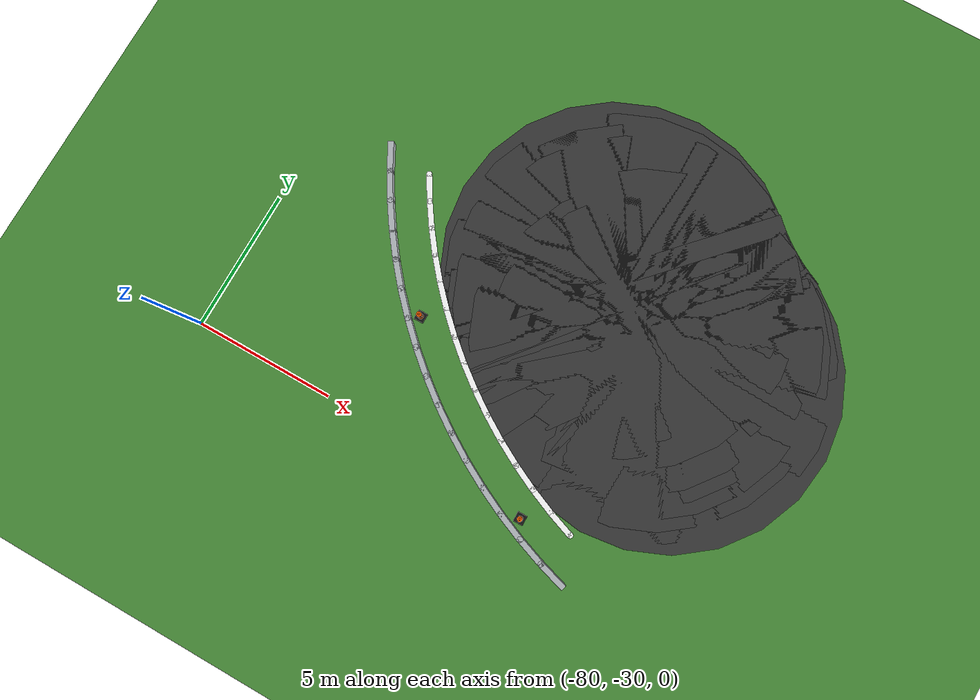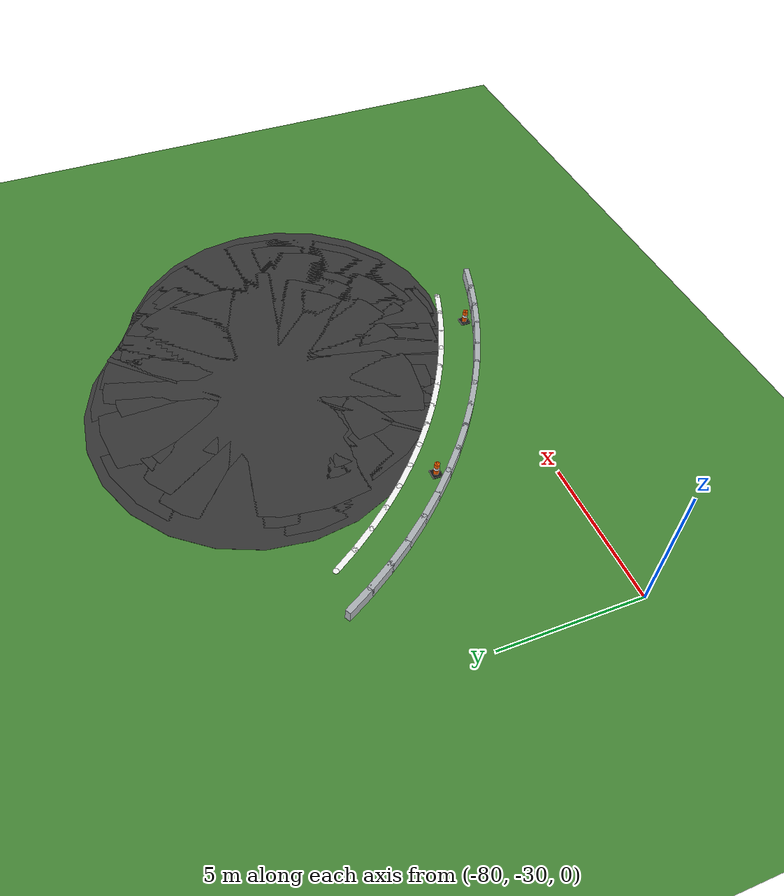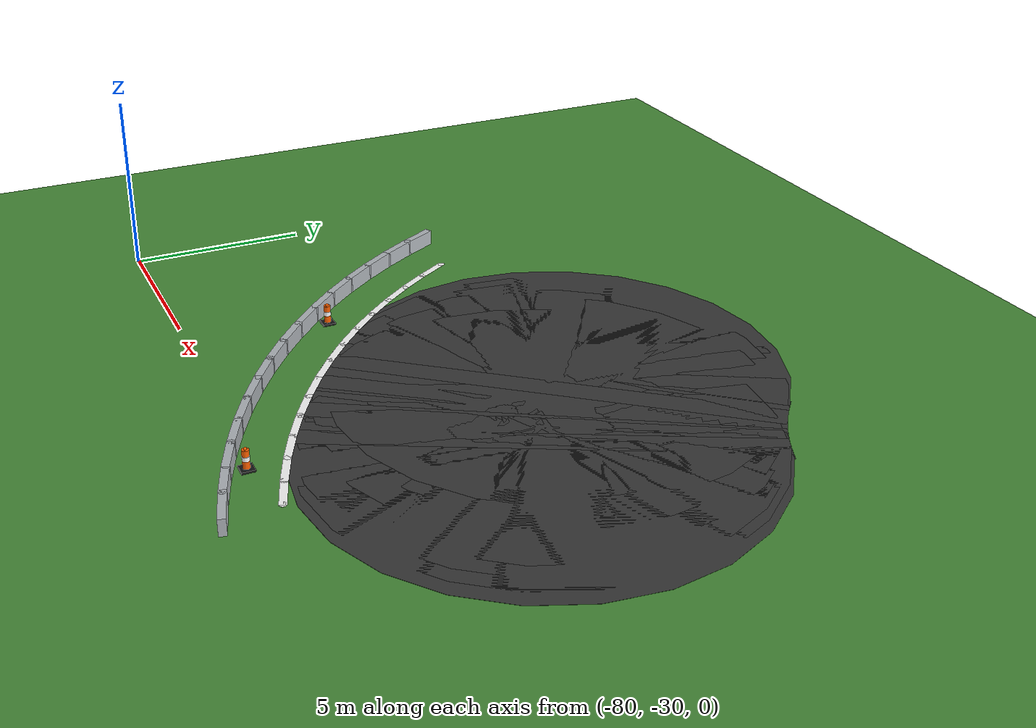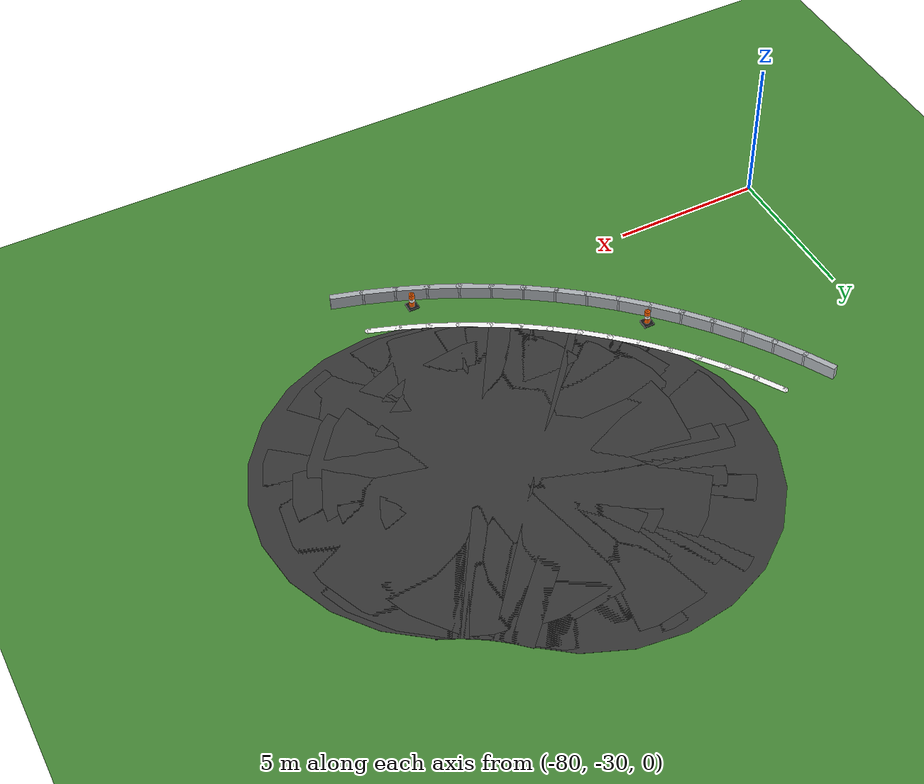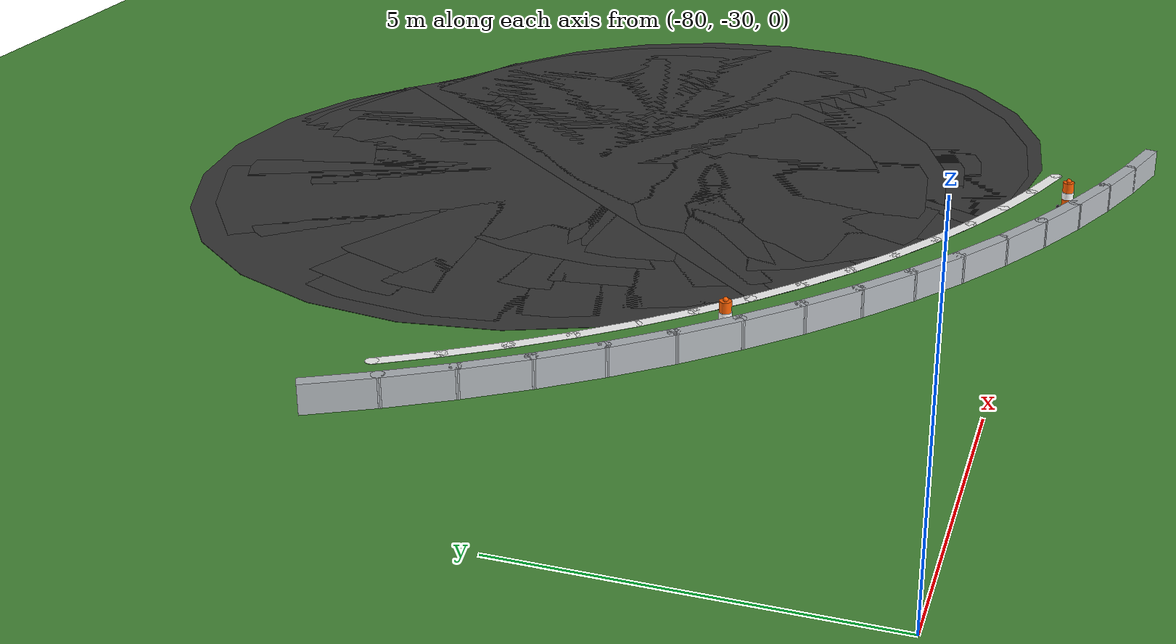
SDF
<sdf version="1.6">
 <world name="sem_silesia_ring_2026">
  <model name="ground_plane">
   <static>true</static>
   <link name="link">
    <collision name="collision">
     <geometry><plane><normal>0 0 1</normal><size>600 600</size></plane></geometry>
     <surface><friction><ode><mu>0.6</mu><mu2>0.6</mu2></ode></friction></surface>
    </collision>
    <visual name="visual">
     <geometry><plane><normal>0 0 1</normal><size>600 600</size></plane></geometry>
     <material><ambient>0.28 0.55 0.22 1</ambient><diffuse>0.28 0.55 0.22 1</diffuse></material>
    </visual>
   </link>
  </model>
  <model name="road_L_jnt68">
   <static>true</static>
   <pose>-68.6832 -21.4917 0.0030 0 0 0</pose>
   <link name="link">
    <visual name="v">
     <geometry><cylinder><radius>6.0000</radius><length>0.0060</length></cylinder></geometry>
     <material><ambient>0.22 0.22 0.22 1</ambient><diffuse>0.22 0.22 0.22 1</diffuse></material>
    </visual>
    <collision name="c">
     <geometry><cylinder><radius>6.0000</radius><length>0.0060</length></cylinder></geometry>
     <surface><friction><ode><mu>0.9</mu><mu2>0.9</mu2></ode></friction></surface>
    </collision>
   </link>
  </model>
  <model name="road_L_s68">
   <static>true</static>
   <pose>-68.5250 -21.6419 0.0030 0 0 5.5327</pose>
   <link name="link">
    <visual name="v">
     <geometry><box><size>0.6957 12.0000 0.0060</size></box></geometry>
     <material><ambient>0.22 0.22 0.22 1</ambient><diffuse>0.22 0.22 0.22 1</diffuse></material>
    </visual>
    <collision name="c">
     <geometry><box><size>0.6957 12.0000 0.0060</size></box></geometry>
     <surface><friction><ode><mu>0.9</mu><mu2>0.9</mu2></ode></friction></surface>
    </collision>
   </link>
  </model>
  <model name="road_L_jnt69">
   <static>true</static>
   <pose>-68.3641 -21.7893 0.0030 0 0 0</pose>
   <link name="link">
    <visual name="v">
     <geometry><cylinder><radius>6.0000</radius><length>0.0060</length></cylinder></geometry>
     <material><ambient>0.22 0.22 0.22 1</ambient><diffuse>0.22 0.22 0.22 1</diffuse></material>
    </visual>
    <collision name="c">
     <geometry><cylinder><radius>6.0000</radius><length>0.0060</length></cylinder></geometry>
     <surface><friction><ode><mu>0.9</mu><mu2>0.9</mu2></ode></friction></surface>
    </collision>
   </link>
  </model>
  <model name="road_L_s69">
   <static>true</static>
   <pose>-68.2007 -21.9339 0.0030 0 0 5.5676</pose>
   <link name="link">
    <visual name="v">
     <geometry><box><size>0.6957 12.0000 0.0060</size></box></geometry>
     <material><ambient>0.22 0.22 0.22 1</ambient><diffuse>0.22 0.22 0.22 1</diffuse></material>
    </visual>
    <collision name="c">
     <geometry><box><size>0.6957 12.0000 0.0060</size></box></geometry>
     <surface><friction><ode><mu>0.9</mu><mu2>0.9</mu2></ode></friction></surface>
    </collision>
   </link>
  </model>
  <model name="road_L_jnt70">
   <static>true</static>
   <pose>-68.0348 -22.0756 0.0030 0 0 0</pose>
   <link name="link">
    <visual name="v">
     <geometry><cylinder><radius>6.0000</radius><length>0.0060</length></cylinder></geometry>
     <material><ambient>0.22 0.22 0.22 1</ambient><diffuse>0.22 0.22 0.22 1</diffuse></material>
    </visual>
    <collision name="c">
     <geometry><cylinder><radius>6.0000</radius><length>0.0060</length></cylinder></geometry>
     <surface><friction><ode><mu>0.9</mu><mu2>0.9</mu2></ode></friction></surface>
    </collision>
   </link>
  </model>
  <model name="road_L_s70">
   <static>true</static>
   <pose>-67.8665 -22.2143 0.0030 0 0 5.6025</pose>
   <link name="link">
    <visual name="v">
     <geometry><box><size>0.6957 12.0000 0.0060</size></box></geometry>
     <material><ambient>0.22 0.22 0.22 1</ambient><diffuse>0.22 0.22 0.22 1</diffuse></material>
    </visual>
    <collision name="c">
     <geometry><box><size>0.6957 12.0000 0.0060</size></box></geometry>
     <surface><friction><ode><mu>0.9</mu><mu2>0.9</mu2></ode></friction></surface>
    </collision>
   </link>
  </model>
  <model name="road_L_jnt71">
   <static>true</static>
   <pose>-67.6958 -22.3501 0.0030 0 0 0</pose>
   <link name="link">
    <visual name="v">
     <geometry><cylinder><radius>6.0000</radius><length>0.0060</length></cylinder></geometry>
     <material><ambient>0.22 0.22 0.22 1</ambient><diffuse>0.22 0.22 0.22 1</diffuse></material>
    </visual>
    <collision name="c">
     <geometry><cylinder><radius>6.0000</radius><length>0.0060</length></cylinder></geometry>
     <surface><friction><ode><mu>0.9</mu><mu2>0.9</mu2></ode></friction></surface>
    </collision>
   </link>
  </model>
  <model name="road_L_s71">
   <static>true</static>
   <pose>-67.5227 -22.4829 0.0030 0 0 5.6374</pose>
   <link name="link">
    <visual name="v">
     <geometry><box><size>0.6957 12.0000 0.0060</size></box></geometry>
     <material><ambient>0.22 0.22 0.22 1</ambient><diffuse>0.22 0.22 0.22 1</diffuse></material>
    </visual>
    <collision name="c">
     <geometry><box><size>0.6957 12.0000 0.0060</size></box></geometry>
     <surface><friction><ode><mu>0.9</mu><mu2>0.9</mu2></ode></friction></surface>
    </collision>
   </link>
  </model>
  <model name="road_L_jnt72">
   <static>true</static>
   <pose>-67.3473 -22.6127 0.0030 0 0 0</pose>
   <link name="link">
    <visual name="v">
     <geometry><cylinder><radius>6.0000</radius><length>0.0060</length></cylinder></geometry>
     <material><ambient>0.22 0.22 0.22 1</ambient><diffuse>0.22 0.22 0.22 1</diffuse></material>
    </visual>
    <collision name="c">
     <geometry><cylinder><radius>6.0000</radius><length>0.0060</length></cylinder></geometry>
     <surface><friction><ode><mu>0.9</mu><mu2>0.9</mu2></ode></friction></surface>
    </collision>
   </link>
  </model>
  <model name="road_L_s72">
   <static>true</static>
   <pose>-67.1697 -22.7394 0.0030 0 0 5.6723</pose>
   <link name="link">
    <visual name="v">
     <geometry><box><size>0.6957 12.0000 0.0060</size></box></geometry>
     <material><ambient>0.22 0.22 0.22 1</ambient><diffuse>0.22 0.22 0.22 1</diffuse></material>
    </visual>
    <collision name="c">
     <geometry><box><size>0.6957 12.0000 0.0060</size></box></geometry>
     <surface><friction><ode><mu>0.9</mu><mu2>0.9</mu2></ode></friction></surface>
    </collision>
   </link>
  </model>
  <model name="road_L_jnt73">
   <static>true</static>
   <pose>-66.9899 -22.8630 0.0030 0 0 0</pose>
   <link name="link">
    <visual name="v">
     <geometry><cylinder><radius>6.0000</radius><length>0.0060</length></cylinder></geometry>
     <material><ambient>0.22 0.22 0.22 1</ambient><diffuse>0.22 0.22 0.22 1</diffuse></material>
    </visual>
    <collision name="c">
     <geometry><cylinder><radius>6.0000</radius><length>0.0060</length></cylinder></geometry>
     <surface><friction><ode><mu>0.9</mu><mu2>0.9</mu2></ode></friction></surface>
    </collision>
   </link>
  </model>
  <model name="road_L_s73">
   <static>true</static>
   <pose>-66.8080 -22.9834 0.0030 0 0 5.7072</pose>
   <link name="link">
    <visual name="v">
     <geometry><box><size>0.6957 12.0000 0.0060</size></box></geometry>
     <material><ambient>0.22 0.22 0.22 1</ambient><diffuse>0.22 0.22 0.22 1</diffuse></material>
    </visual>
    <collision name="c">
     <geometry><box><size>0.6957 12.0000 0.0060</size></box></geometry>
     <surface><friction><ode><mu>0.9</mu><mu2>0.9</mu2></ode></friction></surface>
    </collision>
   </link>
  </model>
  <model name="road_L_jnt74">
   <static>true</static>
   <pose>-66.6240 -23.1006 0.0030 0 0 0</pose>
   <link name="link">
    <visual name="v">
     <geometry><cylinder><radius>6.0000</radius><length>0.0060</length></cylinder></geometry>
     <material><ambient>0.22 0.22 0.22 1</ambient><diffuse>0.22 0.22 0.22 1</diffuse></material>
    </visual>
    <collision name="c">
     <geometry><cylinder><radius>6.0000</radius><length>0.0060</length></cylinder></geometry>
     <surface><friction><ode><mu>0.9</mu><mu2>0.9</mu2></ode></friction></surface>
    </collision>
   </link>
  </model>
  <model name="road_L_s74">
   <static>true</static>
   <pose>-66.4380 -23.2146 0.0030 0 0 5.7421</pose>
   <link name="link">
    <visual name="v">
     <geometry><box><size>0.6957 12.0000 0.0060</size></box></geometry>
     <material><ambient>0.22 0.22 0.22 1</ambient><diffuse>0.22 0.22 0.22 1</diffuse></material>
    </visual>
    <collision name="c">
     <geometry><box><size>0.6957 12.0000 0.0060</size></box></geometry>
     <surface><friction><ode><mu>0.9</mu><mu2>0.9</mu2></ode></friction></surface>
    </collision>
   </link>
  </model>
  <model name="road_L_jnt75">
   <static>true</static>
   <pose>-66.2500 -23.3253 0.0030 0 0 0</pose>
   <link name="link">
    <visual name="v">
     <geometry><cylinder><radius>6.0000</radius><length>0.0060</length></cylinder></geometry>
     <material><ambient>0.22 0.22 0.22 1</ambient><diffuse>0.22 0.22 0.22 1</diffuse></material>
    </visual>
    <collision name="c">
     <geometry><cylinder><radius>6.0000</radius><length>0.0060</length></cylinder></geometry>
     <surface><friction><ode><mu>0.9</mu><mu2>0.9</mu2></ode></friction></surface>
    </collision>
   </link>
  </model>
  <model name="road_L_s75">
   <static>true</static>
   <pose>-66.0601 -23.4327 0.0030 0 0 5.7770</pose>
   <link name="link">
    <visual name="v">
     <geometry><box><size>0.6957 12.0000 0.0060</size></box></geometry>
     <material><ambient>0.22 0.22 0.22 1</ambient><diffuse>0.22 0.22 0.22 1</diffuse></material>
    </visual>
    <collision name="c">
     <geometry><box><size>0.6957 12.0000 0.0060</size></box></geometry>
     <surface><friction><ode><mu>0.9</mu><mu2>0.9</mu2></ode></friction></surface>
    </collision>
   </link>
  </model>
  <model name="road_L_jnt76">
   <static>true</static>
   <pose>-65.8684 -23.5368 0.0030 0 0 0</pose>
   <link name="link">
    <visual name="v">
     <geometry><cylinder><radius>6.0000</radius><length>0.0060</length></cylinder></geometry>
     <material><ambient>0.22 0.22 0.22 1</ambient><diffuse>0.22 0.22 0.22 1</diffuse></material>
    </visual>
    <collision name="c">
     <geometry><cylinder><radius>6.0000</radius><length>0.0060</length></cylinder></geometry>
     <surface><friction><ode><mu>0.9</mu><mu2>0.9</mu2></ode></friction></surface>
    </collision>
   </link>
  </model>
  <model name="road_L_s76">
   <static>true</static>
   <pose>-65.6749 -23.6376 0.0030 0 0 5.8119</pose>
   <link name="link">
    <visual name="v">
     <geometry><box><size>0.6957 12.0000 0.0060</size></box></geometry>
     <material><ambient>0.22 0.22 0.22 1</ambient><diffuse>0.22 0.22 0.22 1</diffuse></material>
    </visual>
    <collision name="c">
     <geometry><box><size>0.6957 12.0000 0.0060</size></box></geometry>
     <surface><friction><ode><mu>0.9</mu><mu2>0.9</mu2></ode></friction></surface>
    </collision>
   </link>
  </model>
  <model name="road_L_jnt77">
   <static>true</static>
   <pose>-65.4796 -23.7349 0.0030 0 0 0</pose>
   <link name="link">
    <visual name="v">
     <geometry><cylinder><radius>6.0000</radius><length>0.0060</length></cylinder></geometry>
     <material><ambient>0.22 0.22 0.22 1</ambient><diffuse>0.22 0.22 0.22 1</diffuse></material>
    </visual>
    <collision name="c">
     <geometry><cylinder><radius>6.0000</radius><length>0.0060</length></cylinder></geometry>
     <surface><friction><ode><mu>0.9</mu><mu2>0.9</mu2></ode></friction></surface>
    </collision>
   </link>
  </model>
  <model name="road_L_s77">
   <static>true</static>
   <pose>-65.2827 -23.8288 0.0030 0 0 5.8469</pose>
   <link name="link">
    <visual name="v">
     <geometry><box><size>0.6957 12.0000 0.0060</size></box></geometry>
     <material><ambient>0.22 0.22 0.22 1</ambient><diffuse>0.22 0.22 0.22 1</diffuse></material>
    </visual>
    <collision name="c">
     <geometry><box><size>0.6957 12.0000 0.0060</size></box></geometry>
     <surface><friction><ode><mu>0.9</mu><mu2>0.9</mu2></ode></friction></surface>
    </collision>
   </link>
  </model>
  <model name="wl_Lo_jnt40">
   <static>true</static>
   <pose>-75.9349 -21.7000 0.0050 0 0 0</pose>
   <link name="link">
    <visual name="v">
     <geometry><cylinder><radius>0.1000</radius><length>0.0040</length></cylinder></geometry>
     <material><ambient>1 1 1 1</ambient><diffuse>1 1 1 1</diffuse></material>
    </visual>
    <collision name="c">
     <geometry><cylinder><radius>0.1000</radius><length>0.0040</length></cylinder></geometry>
     <surface><friction><ode><mu>0.9</mu><mu2>0.9</mu2></ode></friction></surface>
    </collision>
   </link>
  </model>
  <model name="wl_Lo_s40">
   <static>true</static>
   <pose>-75.6886 -22.1140 0.0050 0 0 5.2622</pose>
   <link name="link">
    <visual name="v">
     <geometry><box><size>1.0185 0.2000 0.0040</size></box></geometry>
     <material><ambient>1 1 1 1</ambient><diffuse>1 1 1 1</diffuse></material>
    </visual>
    <collision name="c">
     <geometry><box><size>1.0185 0.2000 0.0040</size></box></geometry>
     <surface><friction><ode><mu>0.9</mu><mu2>0.9</mu2></ode></friction></surface>
    </collision>
   </link>
  </model>
  <model name="wl_Lo_jnt41">
   <static>true</static>
   <pose>-75.4315 -22.5214 0.0050 0 0 0</pose>
   <link name="link">
    <visual name="v">
     <geometry><cylinder><radius>0.1000</radius><length>0.0040</length></cylinder></geometry>
     <material><ambient>1 1 1 1</ambient><diffuse>1 1 1 1</diffuse></material>
    </visual>
    <collision name="c">
     <geometry><cylinder><radius>0.1000</radius><length>0.0040</length></cylinder></geometry>
     <surface><friction><ode><mu>0.9</mu><mu2>0.9</mu2></ode></friction></surface>
    </collision>
   </link>
  </model>
  <model name="wl_Lo_s41">
   <static>true</static>
   <pose>-75.1639 -22.9219 0.0050 0 0 5.3145</pose>
   <link name="link">
    <visual name="v">
     <geometry><box><size>1.0185 0.2000 0.0040</size></box></geometry>
     <material><ambient>1 1 1 1</ambient><diffuse>1 1 1 1</diffuse></material>
    </visual>
    <collision name="c">
     <geometry><box><size>1.0185 0.2000 0.0040</size></box></geometry>
     <surface><friction><ode><mu>0.9</mu><mu2>0.9</mu2></ode></friction></surface>
    </collision>
   </link>
  </model>
  <model name="wl_Lo_jnt42">
   <static>true</static>
   <pose>-74.8859 -23.3152 0.0050 0 0 0</pose>
   <link name="link">
    <visual name="v">
     <geometry><cylinder><radius>0.1000</radius><length>0.0040</length></cylinder></geometry>
     <material><ambient>1 1 1 1</ambient><diffuse>1 1 1 1</diffuse></material>
    </visual>
    <collision name="c">
     <geometry><cylinder><radius>0.1000</radius><length>0.0040</length></cylinder></geometry>
     <surface><friction><ode><mu>0.9</mu><mu2>0.9</mu2></ode></friction></surface>
    </collision>
   </link>
  </model>
  <model name="wl_Lo_s42">
   <static>true</static>
   <pose>-74.5977 -23.7012 0.0050 0 0 5.3669</pose>
   <link name="link">
    <visual name="v">
     <geometry><box><size>1.0185 0.2000 0.0040</size></box></geometry>
     <material><ambient>1 1 1 1</ambient><diffuse>1 1 1 1</diffuse></material>
    </visual>
    <collision name="c">
     <geometry><box><size>1.0185 0.2000 0.0040</size></box></geometry>
     <surface><friction><ode><mu>0.9</mu><mu2>0.9</mu2></ode></friction></surface>
    </collision>
   </link>
  </model>
  <model name="wl_Lo_jnt43">
   <static>true</static>
   <pose>-74.2995 -24.0795 0.0050 0 0 0</pose>
   <link name="link">
    <visual name="v">
     <geometry><cylinder><radius>0.1000</radius><length>0.0040</length></cylinder></geometry>
     <material><ambient>1 1 1 1</ambient><diffuse>1 1 1 1</diffuse></material>
    </visual>
    <collision name="c">
     <geometry><cylinder><radius>0.1000</radius><length>0.0040</length></cylinder></geometry>
     <surface><friction><ode><mu>0.9</mu><mu2>0.9</mu2></ode></friction></surface>
    </collision>
   </link>
  </model>
  <model name="wl_Lo_s43">
   <static>true</static>
   <pose>-73.9915 -24.4498 0.0050 0 0 5.4192</pose>
   <link name="link">
    <visual name="v">
     <geometry><box><size>1.0185 0.2000 0.0040</size></box></geometry>
     <material><ambient>1 1 1 1</ambient><diffuse>1 1 1 1</diffuse></material>
    </visual>
    <collision name="c">
     <geometry><box><size>1.0185 0.2000 0.0040</size></box></geometry>
     <surface><friction><ode><mu>0.9</mu><mu2>0.9</mu2></ode></friction></surface>
    </collision>
   </link>
  </model>
  <model name="wl_Lo_jnt44">
   <static>true</static>
   <pose>-73.6739 -24.8120 0.0050 0 0 0</pose>
   <link name="link">
    <visual name="v">
     <geometry><cylinder><radius>0.1000</radius><length>0.0040</length></cylinder></geometry>
     <material><ambient>1 1 1 1</ambient><diffuse>1 1 1 1</diffuse></material>
    </visual>
    <collision name="c">
     <geometry><cylinder><radius>0.1000</radius><length>0.0040</length></cylinder></geometry>
     <surface><friction><ode><mu>0.9</mu><mu2>0.9</mu2></ode></friction></surface>
    </collision>
   </link>
  </model>
  <model name="wl_Lo_s44">
   <static>true</static>
   <pose>-73.3469 -25.1657 0.0050 0 0 5.4716</pose>
   <link name="link">
    <visual name="v">
     <geometry><box><size>1.0185 0.2000 0.0040</size></box></geometry>
     <material><ambient>1 1 1 1</ambient><diffuse>1 1 1 1</diffuse></material>
    </visual>
    <collision name="c">
     <geometry><box><size>1.0185 0.2000 0.0040</size></box></geometry>
     <surface><friction><ode><mu>0.9</mu><mu2>0.9</mu2></ode></friction></surface>
    </collision>
   </link>
  </model>
  <model name="wl_Lo_jnt45">
   <static>true</static>
   <pose>-73.0108 -25.5108 0.0050 0 0 0</pose>
   <link name="link">
    <visual name="v">
     <geometry><cylinder><radius>0.1000</radius><length>0.0040</length></cylinder></geometry>
     <material><ambient>1 1 1 1</ambient><diffuse>1 1 1 1</diffuse></material>
    </visual>
    <collision name="c">
     <geometry><cylinder><radius>0.1000</radius><length>0.0040</length></cylinder></geometry>
     <surface><friction><ode><mu>0.9</mu><mu2>0.9</mu2></ode></friction></surface>
    </collision>
   </link>
  </model>
  <model name="wl_Lo_s45">
   <static>true</static>
   <pose>-72.6657 -25.8469 0.0050 0 0 5.5240</pose>
   <link name="link">
    <visual name="v">
     <geometry><box><size>1.0185 0.2000 0.0040</size></box></geometry>
     <material><ambient>1 1 1 1</ambient><diffuse>1 1 1 1</diffuse></material>
    </visual>
    <collision name="c">
     <geometry><box><size>1.0185 0.2000 0.0040</size></box></geometry>
     <surface><friction><ode><mu>0.9</mu><mu2>0.9</mu2></ode></friction></surface>
    </collision>
   </link>
  </model>
  <model name="wl_Lo_jnt46">
   <static>true</static>
   <pose>-72.3120 -26.1739 0.0050 0 0 0</pose>
   <link name="link">
    <visual name="v">
     <geometry><cylinder><radius>0.1000</radius><length>0.0040</length></cylinder></geometry>
     <material><ambient>1 1 1 1</ambient><diffuse>1 1 1 1</diffuse></material>
    </visual>
    <collision name="c">
     <geometry><cylinder><radius>0.1000</radius><length>0.0040</length></cylinder></geometry>
     <surface><friction><ode><mu>0.9</mu><mu2>0.9</mu2></ode></friction></surface>
    </collision>
   </link>
  </model>
  <model name="wl_Lo_s46">
   <static>true</static>
   <pose>-71.9498 -26.4915 0.0050 0 0 5.5763</pose>
   <link name="link">
    <visual name="v">
     <geometry><box><size>1.0185 0.2000 0.0040</size></box></geometry>
     <material><ambient>1 1 1 1</ambient><diffuse>1 1 1 1</diffuse></material>
    </visual>
    <collision name="c">
     <geometry><box><size>1.0185 0.2000 0.0040</size></box></geometry>
     <surface><friction><ode><mu>0.9</mu><mu2>0.9</mu2></ode></friction></surface>
    </collision>
   </link>
  </model>
  <model name="wl_Lo_jnt47">
   <static>true</static>
   <pose>-71.5795 -26.7995 0.0050 0 0 0</pose>
   <link name="link">
    <visual name="v">
     <geometry><cylinder><radius>0.1000</radius><length>0.0040</length></cylinder></geometry>
     <material><ambient>1 1 1 1</ambient><diffuse>1 1 1 1</diffuse></material>
    </visual>
    <collision name="c">
     <geometry><cylinder><radius>0.1000</radius><length>0.0040</length></cylinder></geometry>
     <surface><friction><ode><mu>0.9</mu><mu2>0.9</mu2></ode></friction></surface>
    </collision>
   </link>
  </model>
  <model name="wl_Lo_s47">
   <static>true</static>
   <pose>-71.2012 -27.0977 0.0050 0 0 5.6287</pose>
   <link name="link">
    <visual name="v">
     <geometry><box><size>1.0185 0.2000 0.0040</size></box></geometry>
     <material><ambient>1 1 1 1</ambient><diffuse>1 1 1 1</diffuse></material>
    </visual>
    <collision name="c">
     <geometry><box><size>1.0185 0.2000 0.0040</size></box></geometry>
     <surface><friction><ode><mu>0.9</mu><mu2>0.9</mu2></ode></friction></surface>
    </collision>
   </link>
  </model>
  <model name="wl_Lo_jnt48">
   <static>true</static>
   <pose>-70.8152 -27.3859 0.0050 0 0 0</pose>
   <link name="link">
    <visual name="v">
     <geometry><cylinder><radius>0.1000</radius><length>0.0040</length></cylinder></geometry>
     <material><ambient>1 1 1 1</ambient><diffuse>1 1 1 1</diffuse></material>
    </visual>
    <collision name="c">
     <geometry><cylinder><radius>0.1000</radius><length>0.0040</length></cylinder></geometry>
     <surface><friction><ode><mu>0.9</mu><mu2>0.9</mu2></ode></friction></surface>
    </collision>
   </link>
  </model>
  <model name="wl_Lo_s48">
   <static>true</static>
   <pose>-70.4219 -27.6639 0.0050 0 0 5.6810</pose>
   <link name="link">
    <visual name="v">
     <geometry><box><size>1.0185 0.2000 0.0040</size></box></geometry>
     <material><ambient>1 1 1 1</ambient><diffuse>1 1 1 1</diffuse></material>
    </visual>
    <collision name="c">
     <geometry><box><size>1.0185 0.2000 0.0040</size></box></geometry>
     <surface><friction><ode><mu>0.9</mu><mu2>0.9</mu2></ode></friction></surface>
    </collision>
   </link>
  </model>
  <model name="wl_Lo_jnt49">
   <static>true</static>
   <pose>-70.0214 -27.9315 0.0050 0 0 0</pose>
   <link name="link">
    <visual name="v">
     <geometry><cylinder><radius>0.1000</radius><length>0.0040</length></cylinder></geometry>
     <material><ambient>1 1 1 1</ambient><diffuse>1 1 1 1</diffuse></material>
    </visual>
    <collision name="c">
     <geometry><cylinder><radius>0.1000</radius><length>0.0040</length></cylinder></geometry>
     <surface><friction><ode><mu>0.9</mu><mu2>0.9</mu2></ode></friction></surface>
    </collision>
   </link>
  </model>
  <model name="wl_Lo_s49">
   <static>true</static>
   <pose>-69.6140 -28.1886 0.0050 0 0 5.7334</pose>
   <link name="link">
    <visual name="v">
     <geometry><box><size>1.0185 0.2000 0.0040</size></box></geometry>
     <material><ambient>1 1 1 1</ambient><diffuse>1 1 1 1</diffuse></material>
    </visual>
    <collision name="c">
     <geometry><box><size>1.0185 0.2000 0.0040</size></box></geometry>
     <surface><friction><ode><mu>0.9</mu><mu2>0.9</mu2></ode></friction></surface>
    </collision>
   </link>
  </model>
  <model name="wl_Lo_jnt50">
   <static>true</static>
   <pose>-69.2000 -28.4349 0.0050 0 0 0</pose>
   <link name="link">
    <visual name="v">
     <geometry><cylinder><radius>0.1000</radius><length>0.0040</length></cylinder></geometry>
     <material><ambient>1 1 1 1</ambient><diffuse>1 1 1 1</diffuse></material>
    </visual>
    <collision name="c">
     <geometry><cylinder><radius>0.1000</radius><length>0.0040</length></cylinder></geometry>
     <surface><friction><ode><mu>0.9</mu><mu2>0.9</mu2></ode></friction></surface>
    </collision>
   </link>
  </model>
  <model name="wl_Lo_s50">
   <static>true</static>
   <pose>-68.7797 -28.6702 0.0050 0 0 5.7858</pose>
   <link name="link">
    <visual name="v">
     <geometry><box><size>1.0185 0.2000 0.0040</size></box></geometry>
     <material><ambient>1 1 1 1</ambient><diffuse>1 1 1 1</diffuse></material>
    </visual>
    <collision name="c">
     <geometry><box><size>1.0185 0.2000 0.0040</size></box></geometry>
     <surface><friction><ode><mu>0.9</mu><mu2>0.9</mu2></ode></friction></surface>
    </collision>
   </link>
  </model>
  <model name="wl_Lo_jnt51">
   <static>true</static>
   <pose>-68.3534 -28.8945 0.0050 0 0 0</pose>
   <link name="link">
    <visual name="v">
     <geometry><cylinder><radius>0.1000</radius><length>0.0040</length></cylinder></geometry>
     <material><ambient>1 1 1 1</ambient><diffuse>1 1 1 1</diffuse></material>
    </visual>
    <collision name="c">
     <geometry><cylinder><radius>0.1000</radius><length>0.0040</length></cylinder></geometry>
     <surface><friction><ode><mu>0.9</mu><mu2>0.9</mu2></ode></friction></surface>
    </collision>
   </link>
  </model>
  <model name="wl_Lo_s51">
   <static>true</static>
   <pose>-67.9214 -29.1076 0.0050 0 0 5.8381</pose>
   <link name="link">
    <visual name="v">
     <geometry><box><size>1.0185 0.2000 0.0040</size></box></geometry>
     <material><ambient>1 1 1 1</ambient><diffuse>1 1 1 1</diffuse></material>
    </visual>
    <collision name="c">
     <geometry><box><size>1.0185 0.2000 0.0040</size></box></geometry>
     <surface><friction><ode><mu>0.9</mu><mu2>0.9</mu2></ode></friction></surface>
    </collision>
   </link>
  </model>
  <model name="wl_Lo_jnt52">
   <static>true</static>
   <pose>-67.4840 -29.3092 0.0050 0 0 0</pose>
   <link name="link">
    <visual name="v">
     <geometry><cylinder><radius>0.1000</radius><length>0.0040</length></cylinder></geometry>
     <material><ambient>1 1 1 1</ambient><diffuse>1 1 1 1</diffuse></material>
    </visual>
    <collision name="c">
     <geometry><cylinder><radius>0.1000</radius><length>0.0040</length></cylinder></geometry>
     <surface><friction><ode><mu>0.9</mu><mu2>0.9</mu2></ode></friction></surface>
    </collision>
   </link>
  </model>
  <model name="wl_Lo_s52">
   <static>true</static>
   <pose>-67.0414 -29.4994 0.0050 0 0 5.8905</pose>
   <link name="link">
    <visual name="v">
     <geometry><box><size>1.0185 0.2000 0.0040</size></box></geometry>
     <material><ambient>1 1 1 1</ambient><diffuse>1 1 1 1</diffuse></material>
    </visual>
    <collision name="c">
     <geometry><box><size>1.0185 0.2000 0.0040</size></box></geometry>
     <surface><friction><ode><mu>0.9</mu><mu2>0.9</mu2></ode></friction></surface>
    </collision>
   </link>
  </model>
  <model name="wl_Lo_jnt53">
   <static>true</static>
   <pose>-66.5940 -29.6779 0.0050 0 0 0</pose>
   <link name="link">
    <visual name="v">
     <geometry><cylinder><radius>0.1000</radius><length>0.0040</length></cylinder></geometry>
     <material><ambient>1 1 1 1</ambient><diffuse>1 1 1 1</diffuse></material>
    </visual>
    <collision name="c">
     <geometry><cylinder><radius>0.1000</radius><length>0.0040</length></cylinder></geometry>
     <surface><friction><ode><mu>0.9</mu><mu2>0.9</mu2></ode></friction></surface>
    </collision>
   </link>
  </model>
  <model name="wl_Lo_s53">
   <static>true</static>
   <pose>-66.1420 -29.8446 0.0050 0 0 5.9428</pose>
   <link name="link">
    <visual name="v">
     <geometry><box><size>1.0185 0.2000 0.0040</size></box></geometry>
     <material><ambient>1 1 1 1</ambient><diffuse>1 1 1 1</diffuse></material>
    </visual>
    <collision name="c">
     <geometry><box><size>1.0185 0.2000 0.0040</size></box></geometry>
     <surface><friction><ode><mu>0.9</mu><mu2>0.9</mu2></ode></friction></surface>
    </collision>
   </link>
  </model>
  <model name="wl_Lo_jnt54">
   <static>true</static>
   <pose>-65.6859 -29.9994 0.0050 0 0 0</pose>
   <link name="link">
    <visual name="v">
     <geometry><cylinder><radius>0.1000</radius><length>0.0040</length></cylinder></geometry>
     <material><ambient>1 1 1 1</ambient><diffuse>1 1 1 1</diffuse></material>
    </visual>
    <collision name="c">
     <geometry><cylinder><radius>0.1000</radius><length>0.0040</length></cylinder></geometry>
     <surface><friction><ode><mu>0.9</mu><mu2>0.9</mu2></ode></friction></surface>
    </collision>
   </link>
  </model>
  <model name="arm_Lo_s39">
   <static>true</static>
   <pose>-77.3127 -21.9000 0.2250 0 0 5.2098</pose>
   <link name="link">
    <visual name="v">
     <geometry><box><size>1.0866 0.2000 0.4500</size></box></geometry>
     <material><ambient>0.70 0.72 0.74 1</ambient><diffuse>0.70 0.72 0.74 1</diffuse></material>
    </visual>
    <collision name="c">
     <geometry><box><size>1.0866 0.2000 0.4500</size></box></geometry>
     <surface><friction><ode><mu>0.9</mu><mu2>0.9</mu2></ode></friction></surface>
    </collision>
   </link>
  </model>
  <model name="arm_Lo_jnt40">
   <static>true</static>
   <pose>-77.0607 -22.3500 0.2250 0 0 0</pose>
   <link name="link">
    <visual name="v">
     <geometry><cylinder><radius>0.1000</radius><length>0.4500</length></cylinder></geometry>
     <material><ambient>0.70 0.72 0.74 1</ambient><diffuse>0.70 0.72 0.74 1</diffuse></material>
    </visual>
    <collision name="c">
     <geometry><cylinder><radius>0.1000</radius><length>0.4500</length></cylinder></geometry>
     <surface><friction><ode><mu>0.9</mu><mu2>0.9</mu2></ode></friction></surface>
    </collision>
   </link>
  </model>
  <model name="arm_Lo_s40">
   <static>true</static>
   <pose>-76.7970 -22.7932 0.2250 0 0 5.2622</pose>
   <link name="link">
    <visual name="v">
     <geometry><box><size>1.0866 0.2000 0.4500</size></box></geometry>
     <material><ambient>0.70 0.72 0.74 1</ambient><diffuse>0.70 0.72 0.74 1</diffuse></material>
    </visual>
    <collision name="c">
     <geometry><box><size>1.0866 0.2000 0.4500</size></box></geometry>
     <surface><friction><ode><mu>0.9</mu><mu2>0.9</mu2></ode></friction></surface>
    </collision>
   </link>
  </model>
  <model name="arm_Lo_jnt41">
   <static>true</static>
   <pose>-76.5218 -23.2294 0.2250 0 0 0</pose>
   <link name="link">
    <visual name="v">
     <geometry><cylinder><radius>0.1000</radius><length>0.4500</length></cylinder></geometry>
     <material><ambient>0.70 0.72 0.74 1</ambient><diffuse>0.70 0.72 0.74 1</diffuse></material>
    </visual>
    <collision name="c">
     <geometry><cylinder><radius>0.1000</radius><length>0.4500</length></cylinder></geometry>
     <surface><friction><ode><mu>0.9</mu><mu2>0.9</mu2></ode></friction></surface>
    </collision>
   </link>
  </model>
  <model name="arm_Lo_s41">
   <static>true</static>
   <pose>-76.2353 -23.6582 0.2250 0 0 5.3145</pose>
   <link name="link">
    <visual name="v">
     <geometry><box><size>1.0866 0.2000 0.4500</size></box></geometry>
     <material><ambient>0.70 0.72 0.74 1</ambient><diffuse>0.70 0.72 0.74 1</diffuse></material>
    </visual>
    <collision name="c">
     <geometry><box><size>1.0866 0.2000 0.4500</size></box></geometry>
     <surface><friction><ode><mu>0.9</mu><mu2>0.9</mu2></ode></friction></surface>
    </collision>
   </link>
  </model>
  <model name="arm_Lo_jnt42">
   <static>true</static>
   <pose>-75.9376 -24.0794 0.2250 0 0 0</pose>
   <link name="link">
    <visual name="v">
     <geometry><cylinder><radius>0.1000</radius><length>0.4500</length></cylinder></geometry>
     <material><ambient>0.70 0.72 0.74 1</ambient><diffuse>0.70 0.72 0.74 1</diffuse></material>
    </visual>
    <collision name="c">
     <geometry><cylinder><radius>0.1000</radius><length>0.4500</length></cylinder></geometry>
     <surface><friction><ode><mu>0.9</mu><mu2>0.9</mu2></ode></friction></surface>
    </collision>
   </link>
  </model>
  <model name="arm_Lo_s42">
   <static>true</static>
   <pose>-75.6291 -24.4926 0.2250 0 0 5.3669</pose>
   <link name="link">
    <visual name="v">
     <geometry><box><size>1.0866 0.2000 0.4500</size></box></geometry>
     <material><ambient>0.70 0.72 0.74 1</ambient><diffuse>0.70 0.72 0.74 1</diffuse></material>
    </visual>
    <collision name="c">
     <geometry><box><size>1.0866 0.2000 0.4500</size></box></geometry>
     <surface><friction><ode><mu>0.9</mu><mu2>0.9</mu2></ode></friction></surface>
    </collision>
   </link>
  </model>
  <model name="arm_Lo_jnt43">
   <static>true</static>
   <pose>-75.3098 -24.8976 0.2250 0 0 0</pose>
   <link name="link">
    <visual name="v">
     <geometry><cylinder><radius>0.1000</radius><length>0.4500</length></cylinder></geometry>
     <material><ambient>0.70 0.72 0.74 1</ambient><diffuse>0.70 0.72 0.74 1</diffuse></material>
    </visual>
    <collision name="c">
     <geometry><cylinder><radius>0.1000</radius><length>0.4500</length></cylinder></geometry>
     <surface><friction><ode><mu>0.9</mu><mu2>0.9</mu2></ode></friction></surface>
    </collision>
   </link>
  </model>
  <model name="arm_Lo_s43">
   <static>true</static>
   <pose>-74.9800 -25.2941 0.2250 0 0 5.4192</pose>
   <link name="link">
    <visual name="v">
     <geometry><box><size>1.0866 0.2000 0.4500</size></box></geometry>
     <material><ambient>0.70 0.72 0.74 1</ambient><diffuse>0.70 0.72 0.74 1</diffuse></material>
    </visual>
    <collision name="c">
     <geometry><box><size>1.0866 0.2000 0.4500</size></box></geometry>
     <surface><friction><ode><mu>0.9</mu><mu2>0.9</mu2></ode></friction></surface>
    </collision>
   </link>
  </model>
  <model name="arm_Lo_jnt44">
   <static>true</static>
   <pose>-74.6400 -25.6819 0.2250 0 0 0</pose>
   <link name="link">
    <visual name="v">
     <geometry><cylinder><radius>0.1000</radius><length>0.4500</length></cylinder></geometry>
     <material><ambient>0.70 0.72 0.74 1</ambient><diffuse>0.70 0.72 0.74 1</diffuse></material>
    </visual>
    <collision name="c">
     <geometry><cylinder><radius>0.1000</radius><length>0.4500</length></cylinder></geometry>
     <surface><friction><ode><mu>0.9</mu><mu2>0.9</mu2></ode></friction></surface>
    </collision>
   </link>
  </model>
  <model name="arm_Lo_s44">
   <static>true</static>
   <pose>-74.2899 -26.0606 0.2250 0 0 5.4716</pose>
   <link name="link">
    <visual name="v">
     <geometry><box><size>1.0866 0.2000 0.4500</size></box></geometry>
     <material><ambient>0.70 0.72 0.74 1</ambient><diffuse>0.70 0.72 0.74 1</diffuse></material>
    </visual>
    <collision name="c">
     <geometry><box><size>1.0866 0.2000 0.4500</size></box></geometry>
     <surface><friction><ode><mu>0.9</mu><mu2>0.9</mu2></ode></friction></surface>
    </collision>
   </link>
  </model>
  <model name="arm_Lo_jnt45">
   <static>true</static>
   <pose>-73.9300 -26.4300 0.2250 0 0 0</pose>
   <link name="link">
    <visual name="v">
     <geometry><cylinder><radius>0.1000</radius><length>0.4500</length></cylinder></geometry>
     <material><ambient>0.70 0.72 0.74 1</ambient><diffuse>0.70 0.72 0.74 1</diffuse></material>
    </visual>
    <collision name="c">
     <geometry><cylinder><radius>0.1000</radius><length>0.4500</length></cylinder></geometry>
     <surface><friction><ode><mu>0.9</mu><mu2>0.9</mu2></ode></friction></surface>
    </collision>
   </link>
  </model>
  <model name="arm_Lo_s45">
   <static>true</static>
   <pose>-73.5606 -26.7899 0.2250 0 0 5.5240</pose>
   <link name="link">
    <visual name="v">
     <geometry><box><size>1.0866 0.2000 0.4500</size></box></geometry>
     <material><ambient>0.70 0.72 0.74 1</ambient><diffuse>0.70 0.72 0.74 1</diffuse></material>
    </visual>
    <collision name="c">
     <geometry><box><size>1.0866 0.2000 0.4500</size></box></geometry>
     <surface><friction><ode><mu>0.9</mu><mu2>0.9</mu2></ode></friction></surface>
    </collision>
   </link>
  </model>
  <model name="arm_Lo_jnt46">
   <static>true</static>
   <pose>-73.1819 -27.1400 0.2250 0 0 0</pose>
   <link name="link">
    <visual name="v">
     <geometry><cylinder><radius>0.1000</radius><length>0.4500</length></cylinder></geometry>
     <material><ambient>0.70 0.72 0.74 1</ambient><diffuse>0.70 0.72 0.74 1</diffuse></material>
    </visual>
    <collision name="c">
     <geometry><cylinder><radius>0.1000</radius><length>0.4500</length></cylinder></geometry>
     <surface><friction><ode><mu>0.9</mu><mu2>0.9</mu2></ode></friction></surface>
    </collision>
   </link>
  </model>
  <model name="arm_Lo_s46">
   <static>true</static>
   <pose>-72.7941 -27.4800 0.2250 0 0 5.5763</pose>
   <link name="link">
    <visual name="v">
     <geometry><box><size>1.0866 0.2000 0.4500</size></box></geometry>
     <material><ambient>0.70 0.72 0.74 1</ambient><diffuse>0.70 0.72 0.74 1</diffuse></material>
    </visual>
    <collision name="c">
     <geometry><box><size>1.0866 0.2000 0.4500</size></box></geometry>
     <surface><friction><ode><mu>0.9</mu><mu2>0.9</mu2></ode></friction></surface>
    </collision>
   </link>
  </model>
  <model name="arm_Lo_jnt47">
   <static>true</static>
   <pose>-72.3976 -27.8098 0.2250 0 0 0</pose>
   <link name="link">
    <visual name="v">
     <geometry><cylinder><radius>0.1000</radius><length>0.4500</length></cylinder></geometry>
     <material><ambient>0.70 0.72 0.74 1</ambient><diffuse>0.70 0.72 0.74 1</diffuse></material>
    </visual>
    <collision name="c">
     <geometry><cylinder><radius>0.1000</radius><length>0.4500</length></cylinder></geometry>
     <surface><friction><ode><mu>0.9</mu><mu2>0.9</mu2></ode></friction></surface>
    </collision>
   </link>
  </model>
  <model name="arm_Lo_s47">
   <static>true</static>
   <pose>-71.9926 -28.1291 0.2250 0 0 5.6287</pose>
   <link name="link">
    <visual name="v">
     <geometry><box><size>1.0866 0.2000 0.4500</size></box></geometry>
     <material><ambient>0.70 0.72 0.74 1</ambient><diffuse>0.70 0.72 0.74 1</diffuse></material>
    </visual>
    <collision name="c">
     <geometry><box><size>1.0866 0.2000 0.4500</size></box></geometry>
     <surface><friction><ode><mu>0.9</mu><mu2>0.9</mu2></ode></friction></surface>
    </collision>
   </link>
  </model>
  <model name="arm_Lo_jnt48">
   <static>true</static>
   <pose>-71.5794 -28.4376 0.2250 0 0 0</pose>
   <link name="link">
    <visual name="v">
     <geometry><cylinder><radius>0.1000</radius><length>0.4500</length></cylinder></geometry>
     <material><ambient>0.70 0.72 0.74 1</ambient><diffuse>0.70 0.72 0.74 1</diffuse></material>
    </visual>
    <collision name="c">
     <geometry><cylinder><radius>0.1000</radius><length>0.4500</length></cylinder></geometry>
     <surface><friction><ode><mu>0.9</mu><mu2>0.9</mu2></ode></friction></surface>
    </collision>
   </link>
  </model>
  <model name="arm_Lo_s48">
   <static>true</static>
   <pose>-71.1582 -28.7353 0.2250 0 0 5.6810</pose>
   <link name="link">
    <visual name="v">
     <geometry><box><size>1.0866 0.2000 0.4500</size></box></geometry>
     <material><ambient>0.70 0.72 0.74 1</ambient><diffuse>0.70 0.72 0.74 1</diffuse></material>
    </visual>
    <collision name="c">
     <geometry><box><size>1.0866 0.2000 0.4500</size></box></geometry>
     <surface><friction><ode><mu>0.9</mu><mu2>0.9</mu2></ode></friction></surface>
    </collision>
   </link>
  </model>
  <model name="arm_Lo_jnt49">
   <static>true</static>
   <pose>-70.7294 -29.0218 0.2250 0 0 0</pose>
   <link name="link">
    <visual name="v">
     <geometry><cylinder><radius>0.1000</radius><length>0.4500</length></cylinder></geometry>
     <material><ambient>0.70 0.72 0.74 1</ambient><diffuse>0.70 0.72 0.74 1</diffuse></material>
    </visual>
    <collision name="c">
     <geometry><cylinder><radius>0.1000</radius><length>0.4500</length></cylinder></geometry>
     <surface><friction><ode><mu>0.9</mu><mu2>0.9</mu2></ode></friction></surface>
    </collision>
   </link>
  </model>
  <model name="arm_Lo_s49">
   <static>true</static>
   <pose>-70.2932 -29.2970 0.2250 0 0 5.7334</pose>
   <link name="link">
    <visual name="v">
     <geometry><box><size>1.0866 0.2000 0.4500</size></box></geometry>
     <material><ambient>0.70 0.72 0.74 1</ambient><diffuse>0.70 0.72 0.74 1</diffuse></material>
    </visual>
    <collision name="c">
     <geometry><box><size>1.0866 0.2000 0.4500</size></box></geometry>
     <surface><friction><ode><mu>0.9</mu><mu2>0.9</mu2></ode></friction></surface>
    </collision>
   </link>
  </model>
  <model name="arm_Lo_jnt50">
   <static>true</static>
   <pose>-69.8500 -29.5607 0.2250 0 0 0</pose>
   <link name="link">
    <visual name="v">
     <geometry><cylinder><radius>0.1000</radius><length>0.4500</length></cylinder></geometry>
     <material><ambient>0.70 0.72 0.74 1</ambient><diffuse>0.70 0.72 0.74 1</diffuse></material>
    </visual>
    <collision name="c">
     <geometry><cylinder><radius>0.1000</radius><length>0.4500</length></cylinder></geometry>
     <surface><friction><ode><mu>0.9</mu><mu2>0.9</mu2></ode></friction></surface>
    </collision>
   </link>
  </model>
  <model name="arm_Lo_s50">
   <static>true</static>
   <pose>-69.4000 -29.8127 0.2250 0 0 5.7858</pose>
   <link name="link">
    <visual name="v">
     <geometry><box><size>1.0866 0.2000 0.4500</size></box></geometry>
     <material><ambient>0.70 0.72 0.74 1</ambient><diffuse>0.70 0.72 0.74 1</diffuse></material>
    </visual>
    <collision name="c">
     <geometry><box><size>1.0866 0.2000 0.4500</size></box></geometry>
     <surface><friction><ode><mu>0.9</mu><mu2>0.9</mu2></ode></friction></surface>
    </collision>
   </link>
  </model>
  <model name="arm_Lo_jnt51">
   <static>true</static>
   <pose>-68.9436 -30.0528 0.2250 0 0 0</pose>
   <link name="link">
    <visual name="v">
     <geometry><cylinder><radius>0.1000</radius><length>0.4500</length></cylinder></geometry>
     <material><ambient>0.70 0.72 0.74 1</ambient><diffuse>0.70 0.72 0.74 1</diffuse></material>
    </visual>
    <collision name="c">
     <geometry><cylinder><radius>0.1000</radius><length>0.4500</length></cylinder></geometry>
     <surface><friction><ode><mu>0.9</mu><mu2>0.9</mu2></ode></friction></surface>
    </collision>
   </link>
  </model>
  <model name="arm_Lo_s51">
   <static>true</static>
   <pose>-68.4811 -30.2809 0.2250 0 0 5.8381</pose>
   <link name="link">
    <visual name="v">
     <geometry><box><size>1.0866 0.2000 0.4500</size></box></geometry>
     <material><ambient>0.70 0.72 0.74 1</ambient><diffuse>0.70 0.72 0.74 1</diffuse></material>
    </visual>
    <collision name="c">
     <geometry><box><size>1.0866 0.2000 0.4500</size></box></geometry>
     <surface><friction><ode><mu>0.9</mu><mu2>0.9</mu2></ode></friction></surface>
    </collision>
   </link>
  </model>
  <model name="arm_Lo_jnt52">
   <static>true</static>
   <pose>-68.0127 -30.4968 0.2250 0 0 0</pose>
   <link name="link">
    <visual name="v">
     <geometry><cylinder><radius>0.1000</radius><length>0.4500</length></cylinder></geometry>
     <material><ambient>0.70 0.72 0.74 1</ambient><diffuse>0.70 0.72 0.74 1</diffuse></material>
    </visual>
    <collision name="c">
     <geometry><cylinder><radius>0.1000</radius><length>0.4500</length></cylinder></geometry>
     <surface><friction><ode><mu>0.9</mu><mu2>0.9</mu2></ode></friction></surface>
    </collision>
   </link>
  </model>
  <model name="arm_Lo_s52">
   <static>true</static>
   <pose>-67.5389 -30.7004 0.2250 0 0 5.8905</pose>
   <link name="link">
    <visual name="v">
     <geometry><box><size>1.0866 0.2000 0.4500</size></box></geometry>
     <material><ambient>0.70 0.72 0.74 1</ambient><diffuse>0.70 0.72 0.74 1</diffuse></material>
    </visual>
    <collision name="c">
     <geometry><box><size>1.0866 0.2000 0.4500</size></box></geometry>
     <surface><friction><ode><mu>0.9</mu><mu2>0.9</mu2></ode></friction></surface>
    </collision>
   </link>
  </model>
  <model name="arm_Lo_jnt53">
   <static>true</static>
   <pose>-67.0598 -30.8915 0.2250 0 0 0</pose>
   <link name="link">
    <visual name="v">
     <geometry><cylinder><radius>0.1000</radius><length>0.4500</length></cylinder></geometry>
     <material><ambient>0.70 0.72 0.74 1</ambient><diffuse>0.70 0.72 0.74 1</diffuse></material>
    </visual>
    <collision name="c">
     <geometry><cylinder><radius>0.1000</radius><length>0.4500</length></cylinder></geometry>
     <surface><friction><ode><mu>0.9</mu><mu2>0.9</mu2></ode></friction></surface>
    </collision>
   </link>
  </model>
  <model name="arm_Lo_s53">
   <static>true</static>
   <pose>-66.5760 -31.0700 0.2250 0 0 5.9428</pose>
   <link name="link">
    <visual name="v">
     <geometry><box><size>1.0866 0.2000 0.4500</size></box></geometry>
     <material><ambient>0.70 0.72 0.74 1</ambient><diffuse>0.70 0.72 0.74 1</diffuse></material>
    </visual>
    <collision name="c">
     <geometry><box><size>1.0866 0.2000 0.4500</size></box></geometry>
     <surface><friction><ode><mu>0.9</mu><mu2>0.9</mu2></ode></friction></surface>
    </collision>
   </link>
  </model>
  <model name="arm_Lo_jnt54">
   <static>true</static>
   <pose>-66.0876 -31.2358 0.2250 0 0 0</pose>
   <link name="link">
    <visual name="v">
     <geometry><cylinder><radius>0.1000</radius><length>0.4500</length></cylinder></geometry>
     <material><ambient>0.70 0.72 0.74 1</ambient><diffuse>0.70 0.72 0.74 1</diffuse></material>
    </visual>
    <collision name="c">
     <geometry><cylinder><radius>0.1000</radius><length>0.4500</length></cylinder></geometry>
     <surface><friction><ode><mu>0.9</mu><mu2>0.9</mu2></ode></friction></surface>
    </collision>
   </link>
  </model>
  <model name="arm_Lo_s54">
   <static>true</static>
   <pose>-65.5951 -31.3887 0.2250 0 0 5.9952</pose>
   <link name="link">
    <visual name="v">
     <geometry><box><size>1.0866 0.2000 0.4500</size></box></geometry>
     <material><ambient>0.70 0.72 0.74 1</ambient><diffuse>0.70 0.72 0.74 1</diffuse></material>
    </visual>
    <collision name="c">
     <geometry><box><size>1.0866 0.2000 0.4500</size></box></geometry>
     <surface><friction><ode><mu>0.9</mu><mu2>0.9</mu2></ode></friction></surface>
    </collision>
   </link>
  </model>
  <model name="cn_Lo_6">
   <static>true</static>
   <pose>-73.6472 -26.1472 0 0 0 0</pose>
   <link name="link">
    <visual name="base">
     <pose>0 0 0.03 0 0 0</pose>
     <geometry><box><size>0.35 0.35 0.06</size></box></geometry>
     <material><ambient>0.08 0.08 0.08 1</ambient><diffuse>0.08 0.08 0.08 1</diffuse></material>
    </visual>
    <visual name="body">
     <pose>0 0 0.30 0 0 0</pose>
     <geometry><cylinder><radius>0.09</radius><length>0.50</length></cylinder></geometry>
     <material><ambient>1.0 0.38 0.0 1</ambient><diffuse>1.0 0.38 0.0 1</diffuse></material>
    </visual>
    <visual name="stripe">
     <pose>0 0 0.32 0 0 0</pose>
     <geometry><cylinder><radius>0.095</radius><length>0.12</length></cylinder></geometry>
     <material><ambient>1 1 1 1</ambient><diffuse>1 1 1 1</diffuse></material>
    </visual>
    <visual name="tip">
     <pose>0 0 0.57 0 0 0</pose>
     <geometry><sphere><radius>0.04</radius></sphere></geometry>
     <material><ambient>1.0 0.38 0.0 1</ambient><diffuse>1.0 0.38 0.0 1</diffuse></material>
    </visual>
    <collision name="c">
     <pose>0 0 0.28 0 0 0</pose>
     <geometry><cylinder><radius>0.09</radius><length>0.56</length></cylinder></geometry>
    </collision>
   </link>
  </model>
  <model name="cn_Lo_7">
   <static>true</static>
   <pose>-67.3858 -30.3309 0 0 0 0</pose>
   <link name="link">
    <visual name="base">
     <pose>0 0 0.03 0 0 0</pose>
     <geometry><box><size>0.35 0.35 0.06</size></box></geometry>
     <material><ambient>0.08 0.08 0.08 1</ambient><diffuse>0.08 0.08 0.08 1</diffuse></material>
    </visual>
    <visual name="body">
     <pose>0 0 0.30 0 0 0</pose>
     <geometry><cylinder><radius>0.09</radius><length>0.50</length></cylinder></geometry>
     <material><ambient>1.0 0.38 0.0 1</ambient><diffuse>1.0 0.38 0.0 1</diffuse></material>
    </visual>
    <visual name="stripe">
     <pose>0 0 0.32 0 0 0</pose>
     <geometry><cylinder><radius>0.095</radius><length>0.12</length></cylinder></geometry>
     <material><ambient>1 1 1 1</ambient><diffuse>1 1 1 1</diffuse></material>
    </visual>
    <visual name="tip">
     <pose>0 0 0.57 0 0 0</pose>
     <geometry><sphere><radius>0.04</radius></sphere></geometry>
     <material><ambient>1.0 0.38 0.0 1</ambient><diffuse>1.0 0.38 0.0 1</diffuse></material>
    </visual>
    <collision name="c">
     <pose>0 0 0.28 0 0 0</pose>
     <geometry><cylinder><radius>0.09</radius><length>0.56</length></cylinder></geometry>
    </collision>
   </link>
  </model>
 </world>
</sdf>
